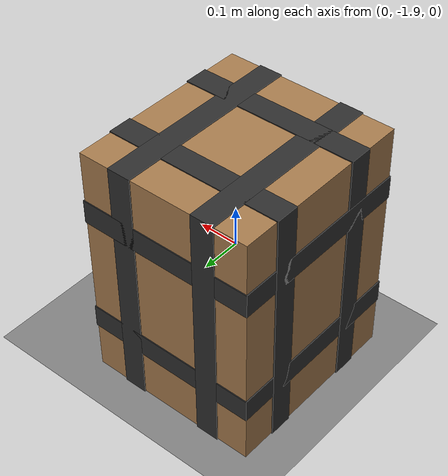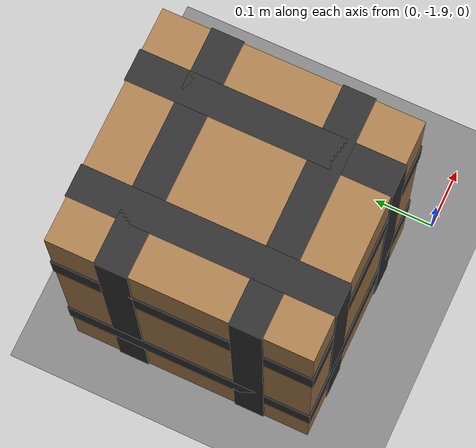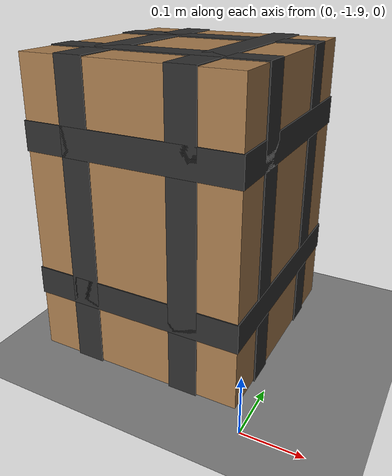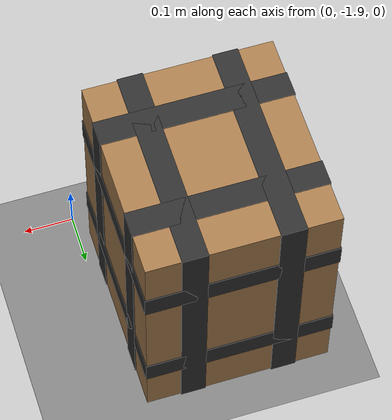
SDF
<sdf version="1.9">
 <world name="ecps295_lowbox_s35_monitor">
  <model name="ground_plane">
   <static>true</static>
   <link name="link">
    <collision name="collision">
     <geometry><plane><normal>0 0 1</normal><size>50 50</size></plane></geometry>
    </collision>
    <visual name="visual">
     <geometry><plane><normal>0 0 1</normal><size>50 50</size></plane></geometry>
     <material><ambient>0.5 0.5 0.5 1</ambient><diffuse>0.5 0.5 0.5 1</diffuse></material>
    </visual>
   </link>
  </model>
  <model name="lb1">
   <static>true</static>
   <pose>-0.21 -1.66 0.262 0 0 0</pose>
   <link name="link">
    <collision name="c"><geometry><box><size>0.37 0.4 0.52</size></box></geometry></collision>
    <visual name="v">
     <geometry><box><size>0.37 0.4 0.52</size></box></geometry>
     <material><ambient>0.65 0.48 0.30 1</ambient><diffuse>0.65 0.48 0.30 1</diffuse></material>
    </visual>
    <visual name="tape_ring0">
     <pose>0.000 0.000 -0.130 0 0 0</pose>
     <geometry><box><size>0.374 0.404 0.050</size></box></geometry>
     <material><ambient>0.18 0.18 0.18 1</ambient><diffuse>0.18 0.18 0.18 1</diffuse></material>
    </visual>
    <visual name="tape_bx0">
     <pose>-0.092 0.000 0.000 0 0 0</pose>
     <geometry><box><size>0.050 0.404 0.524</size></box></geometry>
     <material><ambient>0.18 0.18 0.18 1</ambient><diffuse>0.18 0.18 0.18 1</diffuse></material>
    </visual>
    <visual name="tape_by0">
     <pose>0.000 -0.100 0.000 0 0 0</pose>
     <geometry><box><size>0.374 0.050 0.524</size></box></geometry>
     <material><ambient>0.18 0.18 0.18 1</ambient><diffuse>0.18 0.18 0.18 1</diffuse></material>
    </visual>
    <visual name="tape_ring1">
     <pose>0.000 0.000 0.130 0 0 0</pose>
     <geometry><box><size>0.374 0.404 0.050</size></box></geometry>
     <material><ambient>0.18 0.18 0.18 1</ambient><diffuse>0.18 0.18 0.18 1</diffuse></material>
    </visual>
    <visual name="tape_bx1">
     <pose>0.092 0.000 0.000 0 0 0</pose>
     <geometry><box><size>0.050 0.404 0.524</size></box></geometry>
     <material><ambient>0.18 0.18 0.18 1</ambient><diffuse>0.18 0.18 0.18 1</diffuse></material>
    </visual>
    <visual name="tape_by1">
     <pose>0.000 0.100 0.000 0 0 0</pose>
     <geometry><box><size>0.374 0.050 0.524</size></box></geometry>
     <material><ambient>0.18 0.18 0.18 1</ambient><diffuse>0.18 0.18 0.18 1</diffuse></material>
    </visual>
   </link>
  </model>
 </world>
</sdf>
